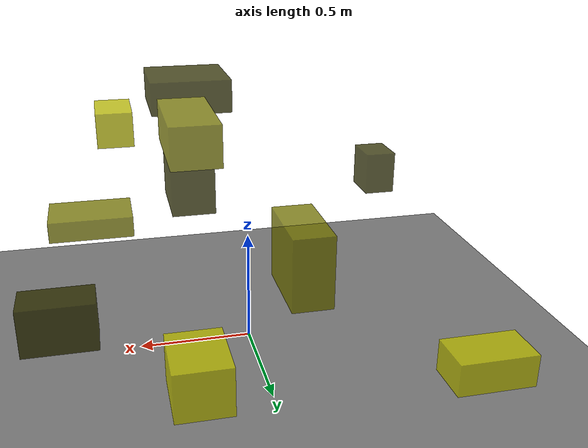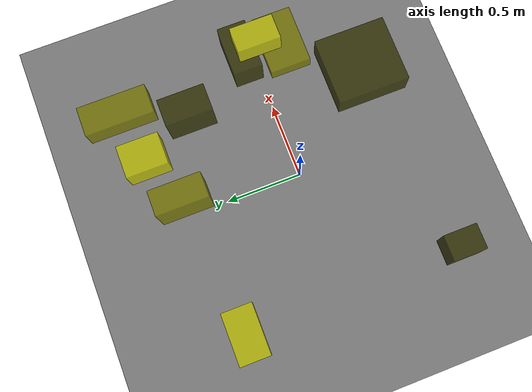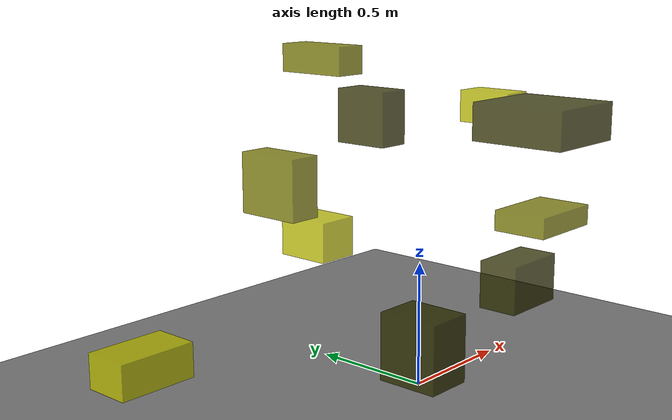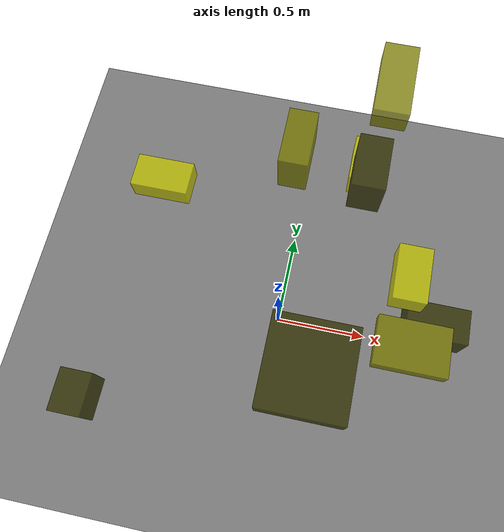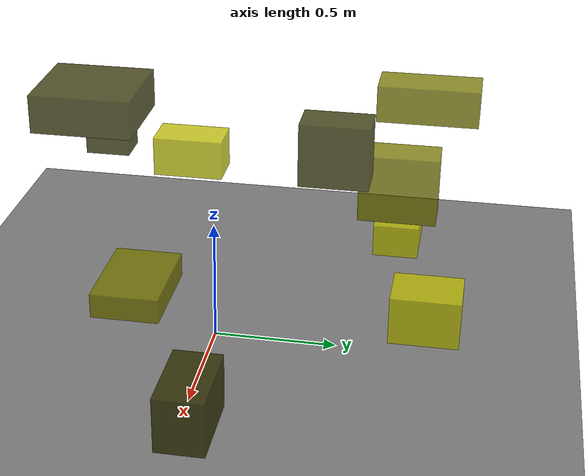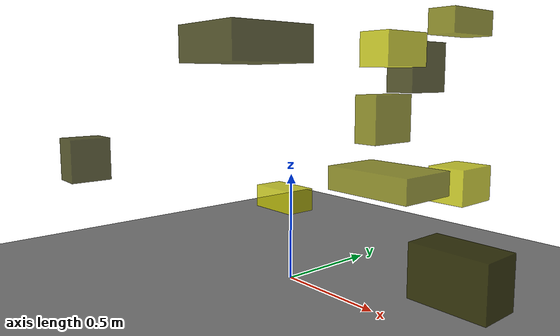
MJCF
<?xml version="1.0"?>
<mujoco model="obstacle_scene">
  <compiler angle="radian" coordinate="local"/>
  <option timestep="0.001" gravity="0 0 -9.81"/>

  <asset>
    <material name="obstacle_mat" rgba="0.8 0.8 0.0 0.8"/>
    <material name="ground_mat" rgba="0.5 0.5 0.5 1"/>
  </asset>

  <worldbody>
    <!-- Ground plane -->
    <geom name="ground" type="plane" size="3 3 0.1" material="ground_mat"/>

    <!-- Obstacles -->
    <body name="obstacle_0" pos="0.838578 0.085914 0.225046">
      <geom name="obs_0" type="box" size="0.162653 0.092996 0.109907" rgba="0.2 0.2 0.0 0.8"/>
    </body>
    <body name="obstacle_1" pos="0.669375 -0.132619 0.584756">
      <geom name="obs_1" type="box" size="0.176016 0.120162 0.044195" rgba="0.5 0.5 0.0 0.8"/>
    </body>
    <body name="obstacle_2" pos="0.342483 0.870323 0.400051">
      <geom name="obs_2" type="box" size="0.101687 0.129457 0.092533" rgba="0.8 0.8 0.0 0.8"/>
    </body>
    <body name="obstacle_3" pos="0.198392 -0.406721 1.076829">
      <geom name="obs_3" type="box" size="0.176785 0.187461 0.072011" rgba="0.2 0.2 0.0 0.8"/>
    </body>
    <body name="obstacle_4" pos="-0.049028 0.720102 0.723242">
      <geom name="obs_4" type="box" size="0.073449 0.150170 0.133435" rgba="0.5 0.5 0.0 0.8"/>
    </body>
    <body name="obstacle_5" pos="0.542456 0.046565 1.056526">
      <geom name="obs_5" type="box" size="0.069167 0.116730 0.066467" rgba="0.8 0.8 0.0 0.8"/>
    </body>
    <body name="obstacle_6" pos="-0.826341 -0.656928 0.542146">
      <geom name="obs_6" type="box" size="0.075991 0.098797 0.106006" rgba="0.2 0.2 0.0 0.8"/>
    </body>
    <body name="obstacle_7" pos="0.339816 0.832556 1.223120">
      <geom name="obs_7" type="box" size="0.074700 0.172001 0.063370" rgba="0.5 0.5 0.0 0.8"/>
    </body>
    <body name="obstacle_8" pos="-0.841722 0.675257 0.150481">
      <geom name="obs_8" type="box" size="0.168817 0.099672 0.072105" rgba="0.8 0.8 0.0 0.8"/>
    </body>
    <body name="obstacle_9" pos="0.308964 0.515757 0.997030">
      <geom name="obs_9" type="box" size="0.073292 0.125960 0.117673" rgba="0.2 0.2 0.0 0.8"/>
    </body>
  </worldbody>
</mujoco>
